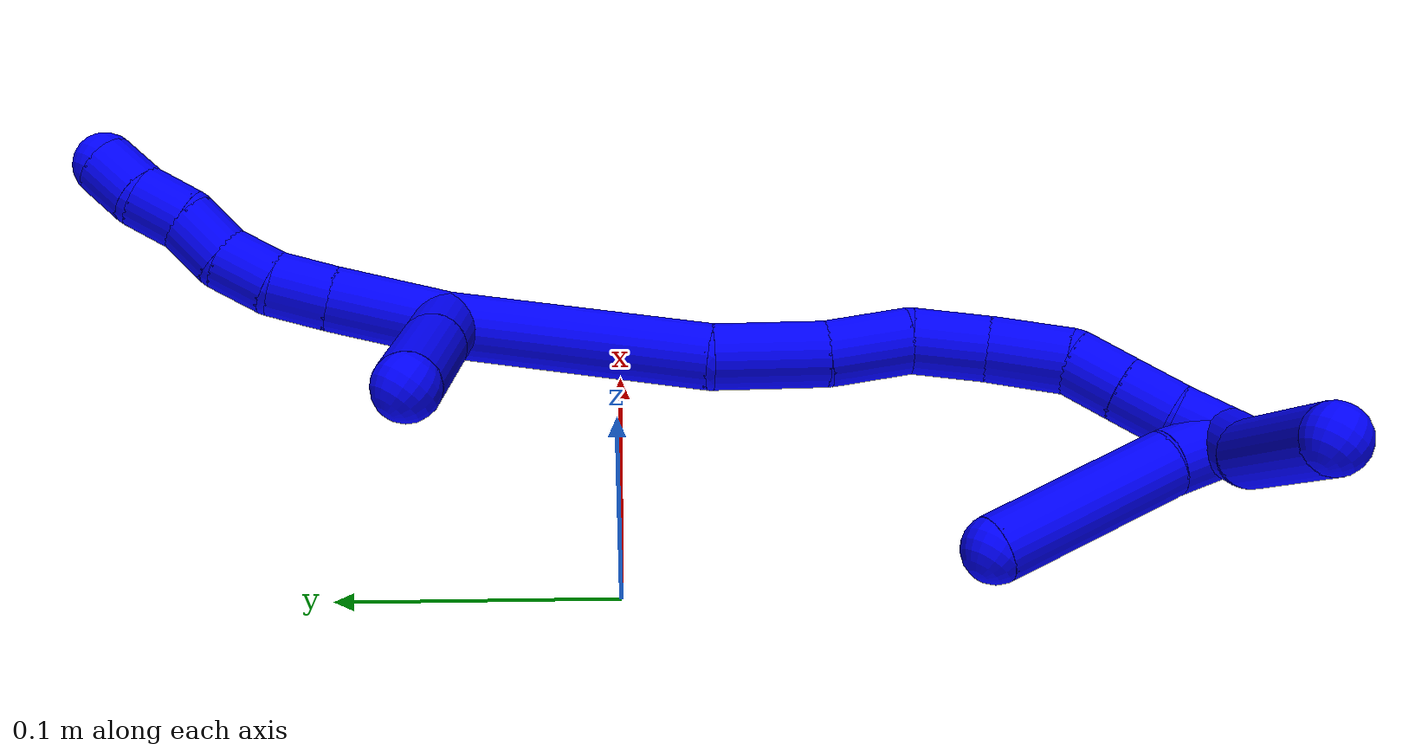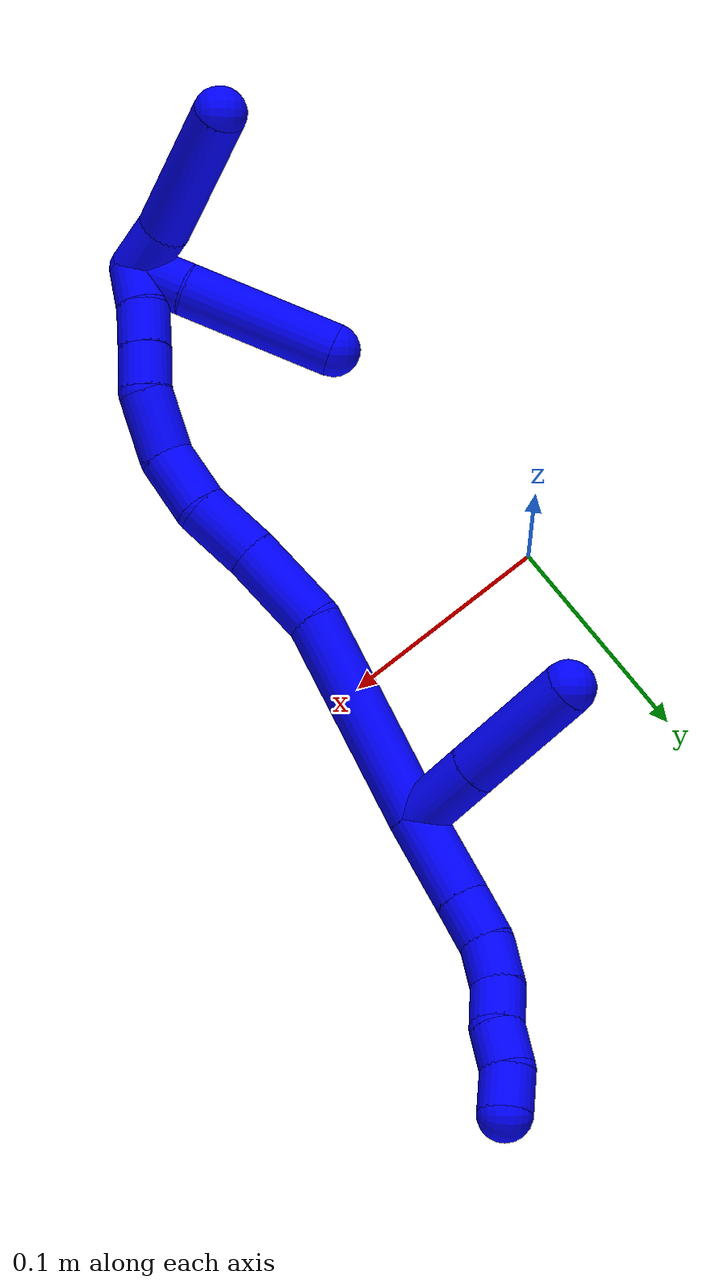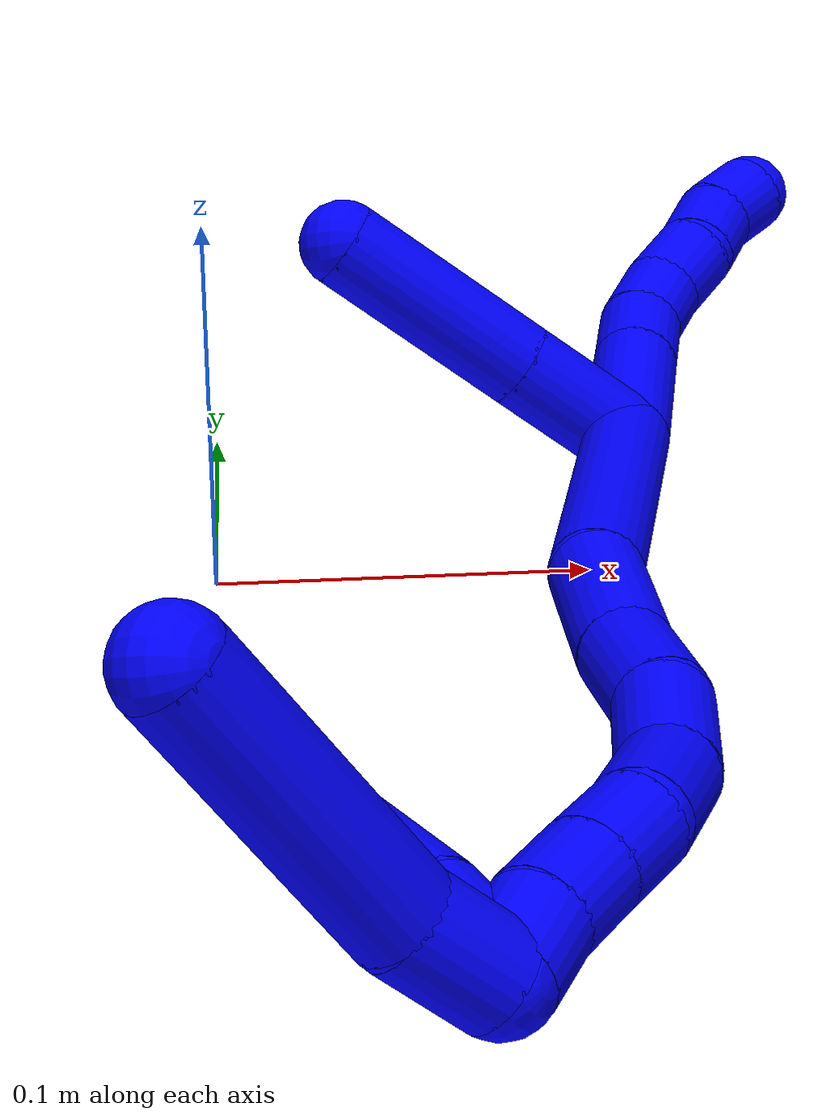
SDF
<sdf version="1.7">
 <world name="default">
  <model name="photoneo_s_sensor">
   <static>1</static>
   <pose>0 0 2 1.57079 1.57079 3.14159</pose>
   <link name="link">
    <inertial><mass>0.1</mass></inertial>
    <sensor name="sensor" type="depth">
     <update_rate>30</update_rate>
     <camera>
      <horizontal_fov>1.22</horizontal_fov>
      <image><width>1920</width><height>1200</height><format>B8G8R8</format></image>
      <clip><near>0.1</near><far>4</far></clip>
      <depth_camera><output>points</output></depth_camera>
     </camera>
     <plugin name="camera_plugin" filename="libgazebo_ros_depth_camera.so">
      <baseline>0.2</baseline>
      <alwaysOn>1</alwaysOn>
      <updateRate>0.0</updateRate>
      <cameraName>camera_ir</cameraName>
      <imageTopicName>/camera/color/image_raw</imageTopicName>
      <cameraInfoTopicName>/camera/color/camera_info</cameraInfoTopicName>
      <depthImageTopicName>/camera/depth/image_raw</depthImageTopicName>
      <depthImageCameraInfoTopicName>/camera/depth/camera_info</depthImageCameraInfoTopicName>
      <pointCloudTopicName>/camera/depth/points</pointCloudTopicName>
      <frameName>fr_optical</frameName>
      <pointCloudCutoff>0.1</pointCloudCutoff>
      <pointCloudCutoffMax>2.0</pointCloudCutoffMax>
      <distortionK1>0</distortionK1>
      <distortionK2>0</distortionK2>
      <distortionK3>0</distortionK3>
      <distortionT1>0</distortionT1>
      <distortionT2>0</distortionT2>
      <CxPrime>0</CxPrime>
      <Cx>0</Cx>
      <Cy>0</Cy>
      <focalLength>0</focalLength>
      <hackBaseline>0</hackBaseline>
     </plugin>
    </sensor>
   </link>
  </model>
  <model name="bin">
   <static>1</static>
   <link name="bottom">
    <collision name="collision-bottom">
     <pose>0 0 -0.01 0 -0 0</pose>
     <geometry><box><size>0.8 0.6 0.02</size></box></geometry>
     <surface>
      <friction><ode><mu>100</mu><mu2>100</mu2></ode></friction>
      <contact><collide_bitmask>65535</collide_bitmask></contact>
     </surface>
    </collision>
   </link>
   <link name="west_wall">
    <collision name="collision-west_wall">
     <pose>-0.41 0 0.1 0 -0 0</pose>
     <geometry><box><size>0.02 0.6 0.2</size></box></geometry>
     <surface>
      <friction><ode><mu>100</mu><mu2>100</mu2></ode></friction>
      <contact><collide_bitmask>65535</collide_bitmask></contact>
     </surface>
    </collision>
   </link>
   <link name="east_wall">
    <collision name="collision-east_wall">
     <pose>0.41 0 0.1 0 -0 0</pose>
     <geometry><box><size>0.02 0.6 0.2</size></box></geometry>
     <surface>
      <friction><ode><mu>100</mu><mu2>100</mu2></ode></friction>
      <contact><collide_bitmask>65535</collide_bitmask></contact>
     </surface>
    </collision>
   </link>
   <link name="south_wall">
    <collision name="collision-south_wall">
     <pose>0 -0.31 0.1 0 -0 0</pose>
     <geometry><box><size>0.8 0.02 0.2</size></box></geometry>
     <surface>
      <friction><ode><mu>100</mu><mu2>100</mu2></ode></friction>
      <contact><collide_bitmask>65535</collide_bitmask></contact>
     </surface>
    </collision>
   </link>
   <link name="north_wall">
    <collision name="collision-north_wall">
     <pose>0 0.31 0.1 0 -0 0</pose>
     <geometry><box><size>0.8 0.02 0.2</size></box></geometry>
     <surface>
      <friction><ode><mu>100</mu><mu2>100</mu2></ode></friction>
      <contact><collide_bitmask>65535</collide_bitmask></contact>
     </surface>
    </collision>
   </link>
  </model>
  <model name="1">
   <static>0</static>
   <link name="1">
    <collision name="collision-cylinder-e_1_2_8">
     <pose>0.009217 0.018698 -0.007852 -1.96836 0.426588 -0.630017</pose>
     <geometry><cylinder><radius>0.0125</radius><length>0.044551</length></cylinder></geometry>
     <surface>
      <friction><ode><mu>1.16</mu><mu2>1.16</mu2><slip1>0</slip1><slip2>0</slip2></ode></friction>
      <contact><ode><kp>1e+06</kp><kd>1</kd><max_vel>0</max_vel><min_depth>0.001</min_depth></ode></contact>
     </surface>
    </collision>
    <visual name="visual-cylinder-e_1_2_8">
     <pose>0.009217 0.018698 -0.007852 -1.96836 0.426588 -0.630017</pose>
     <geometry><cylinder><radius>0.0125</radius><length>0.044551</length></cylinder></geometry>
     <material><ambient>0 0 1 1</ambient></material>
    </visual>
    <collision name="collision-cylinder-e_2_8_9">
     <pose>0.022917 0.04722 -0.019466 -1.93661 0.402865 -0.577205</pose>
     <geometry><cylinder><radius>0.0125</radius><length>0.022872</length></cylinder></geometry>
     <surface>
      <friction><ode><mu>1.16</mu><mu2>1.16</mu2><slip1>0</slip1><slip2>0</slip2></ode></friction>
      <contact><ode><kp>1e+06</kp><kd>1</kd><max_vel>0</max_vel><min_depth>0.001</min_depth></ode></contact>
     </surface>
    </collision>
    <visual name="visual-cylinder-e_2_8_9">
     <pose>0.022917 0.04722 -0.019466 -1.93661 0.402865 -0.577205</pose>
     <geometry><cylinder><radius>0.0125</radius><length>0.022872</length></cylinder></geometry>
     <material><ambient>0 0 1 1</ambient></material>
    </visual>
    <collision name="collision-cylinder-e_3_9_10">
     <pose>0.03228 0.066507 -0.024165 -1.66935 0.474078 -0.521163</pose>
     <geometry><cylinder><radius>0.0125</radius><length>0.021375</length></cylinder></geometry>
     <surface>
      <friction><ode><mu>1.16</mu><mu2>1.16</mu2><slip1>0</slip1><slip2>0</slip2></ode></friction>
      <contact><ode><kp>1e+06</kp><kd>1</kd><max_vel>0</max_vel><min_depth>0.001</min_depth></ode></contact>
     </surface>
    </collision>
    <visual name="visual-cylinder-e_3_9_10">
     <pose>0.03228 0.066507 -0.024165 -1.66935 0.474078 -0.521163</pose>
     <geometry><cylinder><radius>0.0125</radius><length>0.021375</length></cylinder></geometry>
     <material><ambient>0 0 1 1</ambient></material>
    </visual>
    <collision name="collision-cylinder-e_4_10_11">
     <pose>0.041118 0.085342 -0.023075 -1.35791 0.391568 -0.317378</pose>
     <geometry><cylinder><radius>0.0125</radius><length>0.020748</length></cylinder></geometry>
     <surface>
      <friction><ode><mu>1.16</mu><mu2>1.16</mu2><slip1>0</slip1><slip2>0</slip2></ode></friction>
      <contact><ode><kp>1e+06</kp><kd>1</kd><max_vel>0</max_vel><min_depth>0.001</min_depth></ode></contact>
     </surface>
    </collision>
    <visual name="visual-cylinder-e_4_10_11">
     <pose>0.041118 0.085342 -0.023075 -1.35791 0.391568 -0.317378</pose>
     <geometry><cylinder><radius>0.0125</radius><length>0.020748</length></cylinder></geometry>
     <material><ambient>0 0 1 1</ambient></material>
    </visual>
    <collision name="collision-cylinder-e_5_11_12">
     <pose>0.049464 0.103853 -0.021853 -1.65856 0.446046 -0.485487</pose>
     <geometry><cylinder><radius>0.0125</radius><length>0.020338</length></cylinder></geometry>
     <surface>
      <friction><ode><mu>1.16</mu><mu2>1.16</mu2><slip1>0</slip1><slip2>0</slip2></ode></friction>
      <contact><ode><kp>1e+06</kp><kd>1</kd><max_vel>0</max_vel><min_depth>0.001</min_depth></ode></contact>
     </surface>
    </collision>
    <visual name="visual-cylinder-e_5_11_12">
     <pose>0.049464 0.103853 -0.021853 -1.65856 0.446046 -0.485487</pose>
     <geometry><cylinder><radius>0.0125</radius><length>0.020338</length></cylinder></geometry>
     <material><ambient>0 0 1 1</ambient></material>
    </visual>
    <collision name="collision-cylinder-e_6_12_6">
     <pose>0.059455 0.121148 -0.02086 -1.35389 0.591011 -0.479847</pose>
     <geometry><cylinder><radius>0.0125</radius><length>0.020115</length></cylinder></geometry>
     <surface>
      <friction><ode><mu>1.16</mu><mu2>1.16</mu2><slip1>0</slip1><slip2>0</slip2></ode></friction>
      <contact><ode><kp>1e+06</kp><kd>1</kd><max_vel>0</max_vel><min_depth>0.001</min_depth></ode></contact>
     </surface>
    </collision>
    <visual name="visual-cylinder-e_6_12_6">
     <pose>0.059455 0.121148 -0.02086 -1.35389 0.591011 -0.479847</pose>
     <geometry><cylinder><radius>0.0125</radius><length>0.020115</length></cylinder></geometry>
     <material><ambient>0 0 1 1</ambient></material>
    </visual>
    <collision name="collision-cylinder-e_1_2_13">
     <pose>-0.016197 0.003855 -0.009534 -2.75739 -1.00508 2.46133</pose>
     <geometry><cylinder><radius>0.0125</radius><length>0.038371</length></cylinder></geometry>
     <surface>
      <friction><ode><mu>1.16</mu><mu2>1.16</mu2><slip1>0</slip1><slip2>0</slip2></ode></friction>
      <contact><ode><kp>1e+06</kp><kd>1</kd><max_vel>0</max_vel><min_depth>0.001</min_depth></ode></contact>
     </surface>
    </collision>
    <visual name="visual-cylinder-e_1_2_13">
     <pose>-0.016197 0.003855 -0.009534 -2.75739 -1.00508 2.46133</pose>
     <geometry><cylinder><radius>0.0125</radius><length>0.038371</length></cylinder></geometry>
     <material><ambient>0 0 1 1</ambient></material>
    </visual>
    <collision name="collision-cylinder-e_2_13_5">
     <pose>-0.058392 0.013996 -0.034368 -2.7517 -1.00415 2.45108</pose>
     <geometry><cylinder><radius>0.0125</radius><length>0.061629</length></cylinder></geometry>
     <surface>
      <friction><ode><mu>1.16</mu><mu2>1.16</mu2><slip1>0</slip1><slip2>0</slip2></ode></friction>
      <contact><ode><kp>1e+06</kp><kd>1</kd><max_vel>0</max_vel><min_depth>0.001</min_depth></ode></contact>
     </surface>
    </collision>
    <visual name="visual-cylinder-e_2_13_5">
     <pose>-0.058392 0.013996 -0.034368 -2.7517 -1.00415 2.45108</pose>
     <geometry><cylinder><radius>0.0125</radius><length>0.061629</length></cylinder></geometry>
     <material><ambient>0 0 1 1</ambient></material>
    </visual>
    <collision name="collision-cylinder-e_1_2_14">
     <pose>-0.02821 -0.037381 0.019695 1.08587 -0.588679 -0.361852</pose>
     <geometry><cylinder><radius>0.0125</radius><length>0.101608</length></cylinder></geometry>
     <surface>
      <friction><ode><mu>1.16</mu><mu2>1.16</mu2><slip1>0</slip1><slip2>0</slip2></ode></friction>
      <contact><ode><kp>1e+06</kp><kd>1</kd><max_vel>0</max_vel><min_depth>0.001</min_depth></ode></contact>
     </surface>
    </collision>
    <visual name="visual-cylinder-e_1_2_14">
     <pose>-0.02821 -0.037381 0.019695 1.08587 -0.588679 -0.361852</pose>
     <geometry><cylinder><radius>0.0125</radius><length>0.101608</length></cylinder></geometry>
     <material><ambient>0 0 1 1</ambient></material>
    </visual>
    <collision name="collision-cylinder-e_2_14_15">
     <pose>-0.064313 -0.09049 0.051932 0.897652 -0.373949 -0.181723</pose>
     <geometry><cylinder><radius>0.0125</radius><length>0.043218</length></cylinder></geometry>
     <surface>
      <friction><ode><mu>1.16</mu><mu2>1.16</mu2><slip1>0</slip1><slip2>0</slip2></ode></friction>
      <contact><ode><kp>1e+06</kp><kd>1</kd><max_vel>0</max_vel><min_depth>0.001</min_depth></ode></contact>
     </surface>
    </collision>
    <visual name="visual-cylinder-e_2_14_15">
     <pose>-0.064313 -0.09049 0.051932 0.897652 -0.373949 -0.181723</pose>
     <geometry><cylinder><radius>0.0125</radius><length>0.043218</length></cylinder></geometry>
     <material><ambient>0 0 1 1</ambient></material>
    </visual>
    <collision name="collision-cylinder-e_3_15_16">
     <pose>-0.0781 -0.11625 0.075147 0.754414 -0.382493 -0.15311</pose>
     <geometry><cylinder><radius>0.0125</radius><length>0.031578</length></cylinder></geometry>
     <surface>
      <friction><ode><mu>1.16</mu><mu2>1.16</mu2><slip1>0</slip1><slip2>0</slip2></ode></friction>
      <contact><ode><kp>1e+06</kp><kd>1</kd><max_vel>0</max_vel><min_depth>0.001</min_depth></ode></contact>
     </surface>
    </collision>
    <visual name="visual-cylinder-e_3_15_16">
     <pose>-0.0781 -0.11625 0.075147 0.754414 -0.382493 -0.15311</pose>
     <geometry><cylinder><radius>0.0125</radius><length>0.031578</length></cylinder></geometry>
     <material><ambient>0 0 1 1</ambient></material>
    </visual>
    <collision name="collision-cylinder-e_4_16_17">
     <pose>-0.090243 -0.137858 0.09246 1.0501 -0.438046 -0.256476</pose>
     <geometry><cylinder><radius>0.0125</radius><length>0.029473</length></cylinder></geometry>
     <surface>
      <friction><ode><mu>1.16</mu><mu2>1.16</mu2><slip1>0</slip1><slip2>0</slip2></ode></friction>
      <contact><ode><kp>1e+06</kp><kd>1</kd><max_vel>0</max_vel><min_depth>0.001</min_depth></ode></contact>
     </surface>
    </collision>
    <visual name="visual-cylinder-e_4_16_17">
     <pose>-0.090243 -0.137858 0.09246 1.0501 -0.438046 -0.256476</pose>
     <geometry><cylinder><radius>0.0125</radius><length>0.029473</length></cylinder></geometry>
     <material><ambient>0 0 1 1</ambient></material>
    </visual>
    <collision name="collision-cylinder-e_5_17_18">
     <pose>-0.10752 -0.159902 0.103599 1.16473 -0.768977 -0.520833</pose>
     <geometry><cylinder><radius>0.0125</radius><length>0.031711</length></cylinder></geometry>
     <surface>
      <friction><ode><mu>1.16</mu><mu2>1.16</mu2><slip1>0</slip1><slip2>0</slip2></ode></friction>
      <contact><ode><kp>1e+06</kp><kd>1</kd><max_vel>0</max_vel><min_depth>0.001</min_depth></ode></contact>
     </surface>
    </collision>
    <visual name="visual-cylinder-e_5_17_18">
     <pose>-0.10752 -0.159902 0.103599 1.16473 -0.768977 -0.520833</pose>
     <geometry><cylinder><radius>0.0125</radius><length>0.031711</length></cylinder></geometry>
     <material><ambient>0 0 1 1</ambient></material>
    </visual>
    <collision name="collision-cylinder-e_6_18_19">
     <pose>-0.12534 -0.17846 0.107661 1.62495 -0.69783 -0.733373</pose>
     <geometry><cylinder><radius>0.0125</radius><length>0.021148</length></cylinder></geometry>
     <surface>
      <friction><ode><mu>1.16</mu><mu2>1.16</mu2><slip1>0</slip1><slip2>0</slip2></ode></friction>
      <contact><ode><kp>1e+06</kp><kd>1</kd><max_vel>0</max_vel><min_depth>0.001</min_depth></ode></contact>
     </surface>
    </collision>
    <visual name="visual-cylinder-e_6_18_19">
     <pose>-0.12534 -0.17846 0.107661 1.62495 -0.69783 -0.733373</pose>
     <geometry><cylinder><radius>0.0125</radius><length>0.021148</length></cylinder></geometry>
     <material><ambient>0 0 1 1</ambient></material>
    </visual>
    <collision name="collision-cylinder-e_7_19_20">
     <pose>-0.138791 -0.19472 0.106925 1.60721 -0.683359 -0.70668</pose>
     <geometry><cylinder><radius>0.0125</radius><length>0.021085</length></cylinder></geometry>
     <surface>
      <friction><ode><mu>1.16</mu><mu2>1.16</mu2><slip1>0</slip1><slip2>0</slip2></ode></friction>
      <contact><ode><kp>1e+06</kp><kd>1</kd><max_vel>0</max_vel><min_depth>0.001</min_depth></ode></contact>
     </surface>
    </collision>
    <visual name="visual-cylinder-e_7_19_20">
     <pose>-0.138791 -0.19472 0.106925 1.60721 -0.683359 -0.70668</pose>
     <geometry><cylinder><radius>0.0125</radius><length>0.021085</length></cylinder></geometry>
     <material><ambient>0 0 1 1</ambient></material>
    </visual>
    <collision name="collision-cylinder-e_8_20_1">
     <pose>-0.150844 -0.21138 0.107406 1.47936 -0.564308 -0.517202</pose>
     <geometry><cylinder><radius>0.0125</radius><length>0.020179</length></cylinder></geometry>
     <surface>
      <friction><ode><mu>1.16</mu><mu2>1.16</mu2><slip1>0</slip1><slip2>0</slip2></ode></friction>
      <contact><ode><kp>1e+06</kp><kd>1</kd><max_vel>0</max_vel><min_depth>0.001</min_depth></ode></contact>
     </surface>
    </collision>
    <visual name="visual-cylinder-e_8_20_1">
     <pose>-0.150844 -0.21138 0.107406 1.47936 -0.564308 -0.517202</pose>
     <geometry><cylinder><radius>0.0125</radius><length>0.020179</length></cylinder></geometry>
     <material><ambient>0 0 1 1</ambient></material>
    </visual>
    <collision name="collision-cylinder-e_1_1_21">
     <pose>-0.168106 -0.217946 0.103552 -2.74802 -1.17093 2.55739</pose>
     <geometry><cylinder><radius>0.0125</radius><length>0.025765</length></cylinder></geometry>
     <surface>
      <friction><ode><mu>1.16</mu><mu2>1.16</mu2><slip1>0</slip1><slip2>0</slip2></ode></friction>
      <contact><ode><kp>1e+06</kp><kd>1</kd><max_vel>0</max_vel><min_depth>0.001</min_depth></ode></contact>
     </surface>
    </collision>
    <visual name="visual-cylinder-e_1_1_21">
     <pose>-0.168106 -0.217946 0.103552 -2.74802 -1.17093 2.55739</pose>
     <geometry><cylinder><radius>0.0125</radius><length>0.025765</length></cylinder></geometry>
     <material><ambient>0 0 1 1</ambient></material>
    </visual>
    <collision name="collision-cylinder-e_2_21_4">
     <pose>-0.215001 -0.205161 0.093201 -2.05552 -1.23373 1.73136</pose>
     <geometry><cylinder><radius>0.0125</radius><length>0.074235</length></cylinder></geometry>
     <surface>
      <friction><ode><mu>1.16</mu><mu2>1.16</mu2><slip1>0</slip1><slip2>0</slip2></ode></friction>
      <contact><ode><kp>1e+06</kp><kd>1</kd><max_vel>0</max_vel><min_depth>0.001</min_depth></ode></contact>
     </surface>
    </collision>
    <visual name="visual-cylinder-e_2_21_4">
     <pose>-0.215001 -0.205161 0.093201 -2.05552 -1.23373 1.73136</pose>
     <geometry><cylinder><radius>0.0125</radius><length>0.074235</length></cylinder></geometry>
     <material><ambient>0 0 1 1</ambient></material>
    </visual>
    <collision name="collision-cylinder-e_1_1_22">
     <pose>-0.155247 -0.212414 0.097483 -2.53308 0.075986 -0.240935</pose>
     <geometry><cylinder><radius>0.0125</radius><length>0.02616</length></cylinder></geometry>
     <surface>
      <friction><ode><mu>1.16</mu><mu2>1.16</mu2><slip1>0</slip1><slip2>0</slip2></ode></friction>
      <contact><ode><kp>1e+06</kp><kd>1</kd><max_vel>0</max_vel><min_depth>0.001</min_depth></ode></contact>
     </surface>
    </collision>
    <visual name="visual-cylinder-e_1_1_22">
     <pose>-0.155247 -0.212414 0.097483 -2.53308 0.075986 -0.240935</pose>
     <geometry><cylinder><radius>0.0125</radius><length>0.02616</length></cylinder></geometry>
     <material><ambient>0 0 1 1</ambient></material>
    </visual>
    <collision name="collision-cylinder-e_2_22_3">
     <pose>-0.149311 -0.18718 0.054804 -2.63418 0.134294 -0.507525</pose>
     <geometry><cylinder><radius>0.0125</radius><length>0.07384</length></cylinder></geometry>
     <surface>
      <friction><ode><mu>1.16</mu><mu2>1.16</mu2><slip1>0</slip1><slip2>0</slip2></ode></friction>
      <contact><ode><kp>1e+06</kp><kd>1</kd><max_vel>0</max_vel><min_depth>0.001</min_depth></ode></contact>
     </surface>
    </collision>
    <visual name="visual-cylinder-e_2_22_3">
     <pose>-0.149311 -0.18718 0.054804 -2.63418 0.134294 -0.507525</pose>
     <geometry><cylinder><radius>0.0125</radius><length>0.07384</length></cylinder></geometry>
     <material><ambient>0 0 1 1</ambient></material>
    </visual>
    <collision name="collision-sphere-3">
     <pose>-0.144368 -0.169401 0.022826 0 -0 0</pose>
     <geometry><sphere><radius>0.0125</radius></sphere></geometry>
     <surface>
      <friction><ode><mu>1.16</mu><mu2>1.16</mu2><slip1>0</slip1><slip2>0</slip2></ode></friction>
      <contact><ode><kp>1e+06</kp><kd>1</kd><max_vel>0</max_vel><min_depth>0.001</min_depth></ode></contact>
     </surface>
    </collision>
    <visual name="visual-sphere-3">
     <pose>-0.144368 -0.169401 0.022826 0 -0 0</pose>
     <geometry><sphere><radius>0.0125</radius></sphere></geometry>
     <material><ambient>0 0 1 1</ambient></material>
    </visual>
    <collision name="collision-sphere-22">
     <pose>-0.154254 -0.204958 0.086781 0 -0 0</pose>
     <geometry><sphere><radius>0.0125</radius></sphere></geometry>
     <surface>
      <friction><ode><mu>1.16</mu><mu2>1.16</mu2><slip1>0</slip1><slip2>0</slip2></ode></friction>
      <contact><ode><kp>1e+06</kp><kd>1</kd><max_vel>0</max_vel><min_depth>0.001</min_depth></ode></contact>
     </surface>
    </collision>
    <visual name="visual-sphere-22">
     <pose>-0.154254 -0.204958 0.086781 0 -0 0</pose>
     <geometry><sphere><radius>0.0125</radius></sphere></geometry>
     <material><ambient>0 0 1 1</ambient></material>
    </visual>
    <collision name="collision-sphere-4">
     <pose>-0.25003 -0.1943 0.087481 0 -0 0</pose>
     <geometry><sphere><radius>0.0125</radius></sphere></geometry>
     <surface>
      <friction><ode><mu>1.16</mu><mu2>1.16</mu2><slip1>0</slip1><slip2>0</slip2></ode></friction>
      <contact><ode><kp>1e+06</kp><kd>1</kd><max_vel>0</max_vel><min_depth>0.001</min_depth></ode></contact>
     </surface>
    </collision>
    <visual name="visual-sphere-4">
     <pose>-0.25003 -0.1943 0.087481 0 -0 0</pose>
     <geometry><sphere><radius>0.0125</radius></sphere></geometry>
     <material><ambient>0 0 1 1</ambient></material>
    </visual>
    <collision name="collision-sphere-21">
     <pose>-0.179973 -0.216023 0.098921 0 -0 0</pose>
     <geometry><sphere><radius>0.0125</radius></sphere></geometry>
     <surface>
      <friction><ode><mu>1.16</mu><mu2>1.16</mu2><slip1>0</slip1><slip2>0</slip2></ode></friction>
      <contact><ode><kp>1e+06</kp><kd>1</kd><max_vel>0</max_vel><min_depth>0.001</min_depth></ode></contact>
     </surface>
    </collision>
    <visual name="visual-sphere-21">
     <pose>-0.179973 -0.216023 0.098921 0 -0 0</pose>
     <geometry><sphere><radius>0.0125</radius></sphere></geometry>
     <material><ambient>0 0 1 1</ambient></material>
    </visual>
    <collision name="collision-sphere-1">
     <pose>-0.15624 -0.219869 0.108184 0 -0 0</pose>
     <geometry><sphere><radius>0.0125</radius></sphere></geometry>
     <surface>
      <friction><ode><mu>1.16</mu><mu2>1.16</mu2><slip1>0</slip1><slip2>0</slip2></ode></friction>
      <contact><ode><kp>1e+06</kp><kd>1</kd><max_vel>0</max_vel><min_depth>0.001</min_depth></ode></contact>
     </surface>
    </collision>
    <visual name="visual-sphere-1">
     <pose>-0.15624 -0.219869 0.108184 0 -0 0</pose>
     <geometry><sphere><radius>0.0125</radius></sphere></geometry>
     <material><ambient>0 0 1 1</ambient></material>
    </visual>
    <collision name="collision-sphere-12">
     <pose>0.053851 0.112992 -0.022657 0 -0 0</pose>
     <geometry><sphere><radius>0.0125</radius></sphere></geometry>
     <surface>
      <friction><ode><mu>1.16</mu><mu2>1.16</mu2><slip1>0</slip1><slip2>0</slip2></ode></friction>
      <contact><ode><kp>1e+06</kp><kd>1</kd><max_vel>0</max_vel><min_depth>0.001</min_depth></ode></contact>
     </surface>
    </collision>
    <visual name="visual-sphere-12">
     <pose>0.053851 0.112992 -0.022657 0 -0 0</pose>
     <geometry><sphere><radius>0.0125</radius></sphere></geometry>
     <material><ambient>0 0 1 1</ambient></material>
    </visual>
    <collision name="collision-sphere-11">
     <pose>0.045077 0.094715 -0.021049 0 -0 0</pose>
     <geometry><sphere><radius>0.0125</radius></sphere></geometry>
     <surface>
      <friction><ode><mu>1.16</mu><mu2>1.16</mu2><slip1>0</slip1><slip2>0</slip2></ode></friction>
      <contact><ode><kp>1e+06</kp><kd>1</kd><max_vel>0</max_vel><min_depth>0.001</min_depth></ode></contact>
     </surface>
    </collision>
    <visual name="visual-sphere-11">
     <pose>0.045077 0.094715 -0.021049 0 -0 0</pose>
     <geometry><sphere><radius>0.0125</radius></sphere></geometry>
     <material><ambient>0 0 1 1</ambient></material>
    </visual>
    <collision name="collision-sphere-10">
     <pose>0.037159 0.07597 -0.025101 0 -0 0</pose>
     <geometry><sphere><radius>0.0125</radius></sphere></geometry>
     <surface>
      <friction><ode><mu>1.16</mu><mu2>1.16</mu2><slip1>0</slip1><slip2>0</slip2></ode></friction>
      <contact><ode><kp>1e+06</kp><kd>1</kd><max_vel>0</max_vel><min_depth>0.001</min_depth></ode></contact>
     </surface>
    </collision>
    <visual name="visual-sphere-10">
     <pose>0.037159 0.07597 -0.025101 0 -0 0</pose>
     <geometry><sphere><radius>0.0125</radius></sphere></geometry>
     <material><ambient>0 0 1 1</ambient></material>
    </visual>
    <collision name="collision-sphere-9">
     <pose>0.027401 0.057045 -0.02323 0 -0 0</pose>
     <geometry><sphere><radius>0.0125</radius></sphere></geometry>
     <surface>
      <friction><ode><mu>1.16</mu><mu2>1.16</mu2><slip1>0</slip1><slip2>0</slip2></ode></friction>
      <contact><ode><kp>1e+06</kp><kd>1</kd><max_vel>0</max_vel><min_depth>0.001</min_depth></ode></contact>
     </surface>
    </collision>
    <visual name="visual-sphere-9">
     <pose>0.027401 0.057045 -0.02323 0 -0 0</pose>
     <geometry><sphere><radius>0.0125</radius></sphere></geometry>
     <material><ambient>0 0 1 1</ambient></material>
    </visual>
    <collision name="collision-sphere-2">
     <geometry><sphere><radius>0.0125</radius></sphere></geometry>
     <surface>
      <friction><ode><mu>1.16</mu><mu2>1.16</mu2><slip1>0</slip1><slip2>0</slip2></ode></friction>
      <contact><ode><kp>1e+06</kp><kd>1</kd><max_vel>0</max_vel><min_depth>0.001</min_depth></ode></contact>
     </surface>
    </collision>
    <visual name="visual-sphere-2">
     <geometry><sphere><radius>0.0125</radius></sphere></geometry>
     <material><ambient>0 0 1 1</ambient></material>
    </visual>
    <collision name="collision-sphere-19">
     <pose>-0.132134 -0.18655 0.107223 0 -0 0</pose>
     <geometry><sphere><radius>0.0125</radius></sphere></geometry>
     <surface>
      <friction><ode><mu>1.16</mu><mu2>1.16</mu2><slip1>0</slip1><slip2>0</slip2></ode></friction>
      <contact><ode><kp>1e+06</kp><kd>1</kd><max_vel>0</max_vel><min_depth>0.001</min_depth></ode></contact>
     </surface>
    </collision>
    <visual name="visual-sphere-19">
     <pose>-0.132134 -0.18655 0.107223 0 -0 0</pose>
     <geometry><sphere><radius>0.0125</radius></sphere></geometry>
     <material><ambient>0 0 1 1</ambient></material>
    </visual>
    <collision name="collision-sphere-8">
     <pose>0.018434 0.037396 -0.015703 0 -0 0</pose>
     <geometry><sphere><radius>0.0125</radius></sphere></geometry>
     <surface>
      <friction><ode><mu>1.16</mu><mu2>1.16</mu2><slip1>0</slip1><slip2>0</slip2></ode></friction>
      <contact><ode><kp>1e+06</kp><kd>1</kd><max_vel>0</max_vel><min_depth>0.001</min_depth></ode></contact>
     </surface>
    </collision>
    <visual name="visual-sphere-8">
     <pose>0.018434 0.037396 -0.015703 0 -0 0</pose>
     <geometry><sphere><radius>0.0125</radius></sphere></geometry>
     <material><ambient>0 0 1 1</ambient></material>
    </visual>
    <collision name="collision-sphere-6">
     <pose>0.065059 0.129304 -0.019062 0 -0 0</pose>
     <geometry><sphere><radius>0.0125</radius></sphere></geometry>
     <surface>
      <friction><ode><mu>1.16</mu><mu2>1.16</mu2><slip1>0</slip1><slip2>0</slip2></ode></friction>
      <contact><ode><kp>1e+06</kp><kd>1</kd><max_vel>0</max_vel><min_depth>0.001</min_depth></ode></contact>
     </surface>
    </collision>
    <visual name="visual-sphere-6">
     <pose>0.065059 0.129304 -0.019062 0 -0 0</pose>
     <geometry><sphere><radius>0.0125</radius></sphere></geometry>
     <material><ambient>0 0 1 1</ambient></material>
    </visual>
    <collision name="collision-sphere-13">
     <pose>-0.032393 0.007709 -0.019068 0 -0 0</pose>
     <geometry><sphere><radius>0.0125</radius></sphere></geometry>
     <surface>
      <friction><ode><mu>1.16</mu><mu2>1.16</mu2><slip1>0</slip1><slip2>0</slip2></ode></friction>
      <contact><ode><kp>1e+06</kp><kd>1</kd><max_vel>0</max_vel><min_depth>0.001</min_depth></ode></contact>
     </surface>
    </collision>
    <visual name="visual-sphere-13">
     <pose>-0.032393 0.007709 -0.019068 0 -0 0</pose>
     <geometry><sphere><radius>0.0125</radius></sphere></geometry>
     <material><ambient>0 0 1 1</ambient></material>
    </visual>
    <collision name="collision-sphere-5">
     <pose>-0.08439 0.020283 -0.049668 0 -0 0</pose>
     <geometry><sphere><radius>0.0125</radius></sphere></geometry>
     <surface>
      <friction><ode><mu>1.16</mu><mu2>1.16</mu2><slip1>0</slip1><slip2>0</slip2></ode></friction>
      <contact><ode><kp>1e+06</kp><kd>1</kd><max_vel>0</max_vel><min_depth>0.001</min_depth></ode></contact>
     </surface>
    </collision>
    <visual name="visual-sphere-5">
     <pose>-0.08439 0.020283 -0.049668 0 -0 0</pose>
     <geometry><sphere><radius>0.0125</radius></sphere></geometry>
     <material><ambient>0 0 1 1</ambient></material>
    </visual>
    <collision name="collision-sphere-14">
     <pose>-0.056419 -0.074762 0.039391 0 -0 0</pose>
     <geometry><sphere><radius>0.0125</radius></sphere></geometry>
     <surface>
      <friction><ode><mu>1.16</mu><mu2>1.16</mu2><slip1>0</slip1><slip2>0</slip2></ode></friction>
      <contact><ode><kp>1e+06</kp><kd>1</kd><max_vel>0</max_vel><min_depth>0.001</min_depth></ode></contact>
     </surface>
    </collision>
    <visual name="visual-sphere-14">
     <pose>-0.056419 -0.074762 0.039391 0 -0 0</pose>
     <geometry><sphere><radius>0.0125</radius></sphere></geometry>
     <material><ambient>0 0 1 1</ambient></material>
    </visual>
    <collision name="collision-sphere-15">
     <pose>-0.072206 -0.106218 0.064473 0 -0 0</pose>
     <geometry><sphere><radius>0.0125</radius></sphere></geometry>
     <surface>
      <friction><ode><mu>1.16</mu><mu2>1.16</mu2><slip1>0</slip1><slip2>0</slip2></ode></friction>
      <contact><ode><kp>1e+06</kp><kd>1</kd><max_vel>0</max_vel><min_depth>0.001</min_depth></ode></contact>
     </surface>
    </collision>
    <visual name="visual-sphere-15">
     <pose>-0.072206 -0.106218 0.064473 0 -0 0</pose>
     <geometry><sphere><radius>0.0125</radius></sphere></geometry>
     <material><ambient>0 0 1 1</ambient></material>
    </visual>
    <collision name="collision-sphere-16">
     <pose>-0.083993 -0.126282 0.085821 0 -0 0</pose>
     <geometry><sphere><radius>0.0125</radius></sphere></geometry>
     <surface>
      <friction><ode><mu>1.16</mu><mu2>1.16</mu2><slip1>0</slip1><slip2>0</slip2></ode></friction>
      <contact><ode><kp>1e+06</kp><kd>1</kd><max_vel>0</max_vel><min_depth>0.001</min_depth></ode></contact>
     </surface>
    </collision>
    <visual name="visual-sphere-16">
     <pose>-0.083993 -0.126282 0.085821 0 -0 0</pose>
     <geometry><sphere><radius>0.0125</radius></sphere></geometry>
     <material><ambient>0 0 1 1</ambient></material>
    </visual>
    <collision name="collision-sphere-17">
     <pose>-0.096494 -0.149435 0.099098 0 -0 0</pose>
     <geometry><sphere><radius>0.0125</radius></sphere></geometry>
     <surface>
      <friction><ode><mu>1.16</mu><mu2>1.16</mu2><slip1>0</slip1><slip2>0</slip2></ode></friction>
      <contact><ode><kp>1e+06</kp><kd>1</kd><max_vel>0</max_vel><min_depth>0.001</min_depth></ode></contact>
     </surface>
    </collision>
    <visual name="visual-sphere-17">
     <pose>-0.096494 -0.149435 0.099098 0 -0 0</pose>
     <geometry><sphere><radius>0.0125</radius></sphere></geometry>
     <material><ambient>0 0 1 1</ambient></material>
    </visual>
    <collision name="collision-sphere-18">
     <pose>-0.118545 -0.170369 0.1081 0 -0 0</pose>
     <geometry><sphere><radius>0.0125</radius></sphere></geometry>
     <surface>
      <friction><ode><mu>1.16</mu><mu2>1.16</mu2><slip1>0</slip1><slip2>0</slip2></ode></friction>
      <contact><ode><kp>1e+06</kp><kd>1</kd><max_vel>0</max_vel><min_depth>0.001</min_depth></ode></contact>
     </surface>
    </collision>
    <visual name="visual-sphere-18">
     <pose>-0.118545 -0.170369 0.1081 0 -0 0</pose>
     <geometry><sphere><radius>0.0125</radius></sphere></geometry>
     <material><ambient>0 0 1 1</ambient></material>
    </visual>
    <collision name="collision-sphere-20">
     <pose>-0.145447 -0.20289 0.106627 0 -0 0</pose>
     <geometry><sphere><radius>0.0125</radius></sphere></geometry>
     <surface>
      <friction><ode><mu>1.16</mu><mu2>1.16</mu2><slip1>0</slip1><slip2>0</slip2></ode></friction>
      <contact><ode><kp>1e+06</kp><kd>1</kd><max_vel>0</max_vel><min_depth>0.001</min_depth></ode></contact>
     </surface>
    </collision>
    <visual name="visual-sphere-20">
     <pose>-0.145447 -0.20289 0.106627 0 -0 0</pose>
     <geometry><sphere><radius>0.0125</radius></sphere></geometry>
     <material><ambient>0 0 1 1</ambient></material>
    </visual>
    <inertial>
     <pose>-0.076961 -0.082957 0.040497 0 -0 0</pose>
     <mass>0.75</mass>
     <inertia><ixx>6.6e-05</ixx><ixy>0</ixy><ixz>0</ixz><iyy>6.7e-05</iyy><iyz>0</iyz><izz>0.00014</izz></inertia>
    </inertial>
   </link>
   <pose>0.118435 0.065282 0.011473 1.15749 0.795811 0.656662</pose>
  </model>
 </world>
</sdf>
